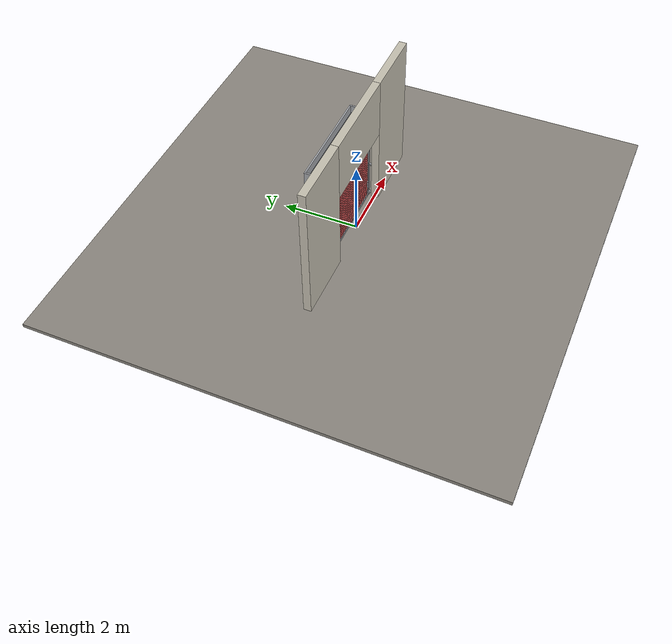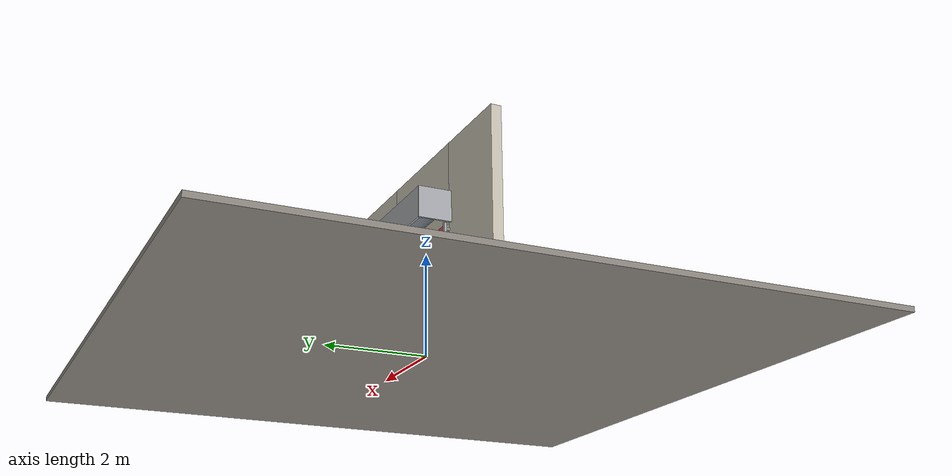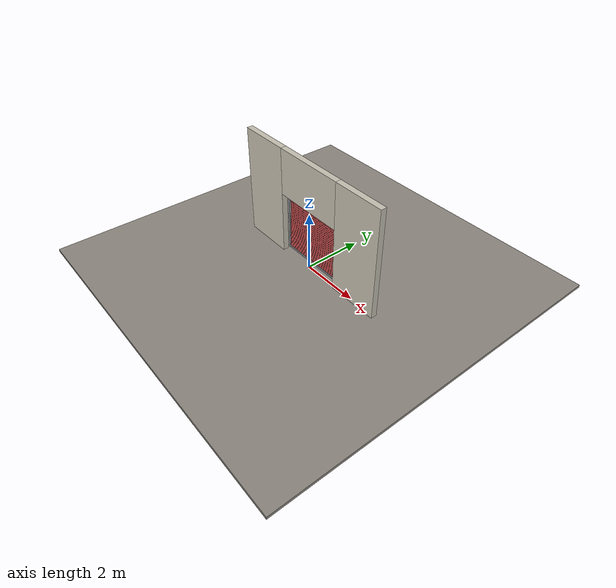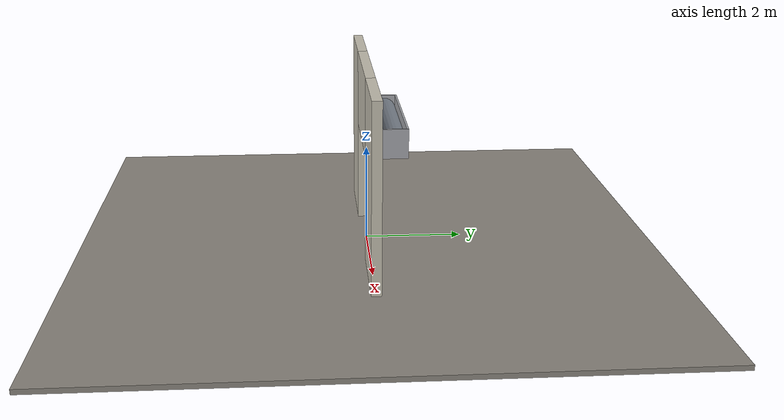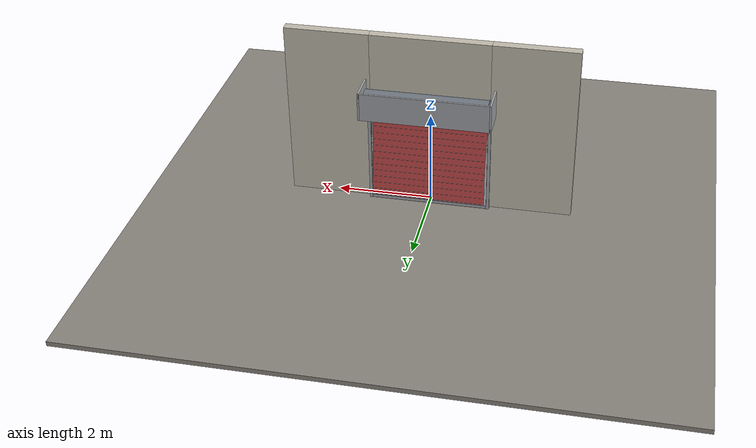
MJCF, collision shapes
<?xml version="1.0" ?>
<mujoco model="db0184_rollup_full">
  <compiler angle="radian" meshdir="../../hardware" texturedir="../../textures" autolimits="true" inertiafromgeom="false"/>
  <option timestep="0.002" integrator="implicitfast" cone="elliptic" impratio="10" noslip_iterations="3">
    <flag multiccd="enable"/>
  </option>
  <size memory="16M"/>
  <default>
    <geom condim="4" solref="0.005 1" solimp="0.95 0.99 0.001"/>
    <joint solreflimit="0.005 1" solimplimit="0.95 0.99 0.001"/>
    <tendon solreflimit="0.005 1"/>
    <equality solref="0.002 1"/>
  </default>
  <visual>
    <headlight ambient="0.4 0.4 0.4" diffuse="0.7 0.7 0.7" specular="0.2 0.2 0.2"/>
    <quality shadowsize="4096"/>
    <map znear="0.01" zfar="60"/>
  </visual>
  <asset>
    <mesh name="pull_bdc5e965ab" file="pull_bdc5e965ab.obj"/>
    <material name="mat_floor" rgba="0.55 0.53 0.5 1" specular="0.2" shininess="0.15" reflectance="0"/>
    <material name="mat_wall" rgba="0.78 0.76 0.7 1" specular="0.2" shininess="0.1" reflectance="0"/>
    <material name="mat_frame" rgba="0.45 0.48 0.52 1" specular="0.32" shininess="0.6" reflectance="0.08"/>
    <material name="mat_track" rgba="0.65 0.66 0.68 1" specular="0.74" shininess="0.5" reflectance="0.36"/>
    <material name="mat_curtain" rgba="0.8 0.81 0.83 1" specular="0.8" shininess="0.6" reflectance="0.4"/>
    <material name="mat_slat_line" rgba="0.25 0.25 0.25 1" specular="0.2" shininess="0.3" reflectance="0"/>
    <material name="mat_astragal" rgba="0.09 0.09 0.1 1" specular="0.2" shininess="0.1" reflectance="0"/>
    <material name="mat_op_black_matte_metal" rgba="0.05 0.05 0.05 1" specular="0.38" shininess="0.3" reflectance="0.12"/>
    <texture name="skybox" type="skybox" builtin="gradient" rgb1="0.6 0.7 0.85" rgb2="0.9 0.92 0.95" width="256" height="256"/>
  </asset>
  <worldbody>
    <light name="sun" pos="1.5 -2.5 4" dir="-0.3 0.5 -0.8" directional="true" diffuse="0.8 0.8 0.8" specular="0.3 0.3 0.3" castshadow="true"/>
    <light name="fill" pos="-1.5 2.5 3" dir="0.3 -0.5 -0.7" directional="true" diffuse="0.35 0.35 0.4" castshadow="false"/>
    <camera name="robot_view" pos="0 -2.959375 1.918625" xyaxes="1 0 0 0 0.26963 0.962964" fovy="52"/>
    <camera name="far_view" pos="0 2.959375 1.918625" xyaxes="-1 0 0 0 -0.26963 0.962964" fovy="52"/>
    <camera name="iso" pos="2.249125 -2.485875 2.392125" xyaxes="0.741536 0.670913 0 -0.242917 0.268487 0.932151" fovy="46"/>
    <camera name="detail_handle" pos="0.25 -0.97 0.51" xyaxes="0.975133 0.221621 0 -0.065674 0.288965 0.955084" fovy="38"/>
    <geom name="floor" type="box" size="6 6 0.05" pos="0 0 -0.05" material="mat_floor" group="0" contype="1" conaffinity="1" friction="0.8 0.005 0.0001" density="2400"/>
    <geom name="wall_left" type="box" size="0.8775 0.1 1.89" pos="-2.1225 0 1.89" material="mat_wall" group="0" contype="1" conaffinity="1" friction="0.6 0.005 0.0001" density="800"/>
    <geom name="wall_right" type="box" size="0.8775 0.1 1.89" pos="2.1225 0 1.89" material="mat_wall" group="0" contype="1" conaffinity="1" friction="0.6 0.005 0.0001" density="800"/>
    <geom name="wall_header" type="box" size="1.245 0.1 0.8" pos="0 0 2.98" material="mat_wall" group="0" contype="1" conaffinity="1" friction="0.6 0.005 0.0001" density="800"/>
    <geom name="guide_l" type="box" size="0.03 0.025 1.09" pos="-1.255 0.185 1.09" material="mat_track" group="0" contype="1" conaffinity="1" friction="0.6 0.005 0.0001" density="7850"/>
    <geom name="guide_r" type="box" size="0.03 0.025 1.09" pos="1.255 0.185 1.09" material="mat_track" group="0" contype="1" conaffinity="1" friction="0.6 0.005 0.0001" density="7850"/>
    <geom name="guide_bracket_l_0" type="box" size="0.028 0.034 0.02" pos="-1.255 0.13 0.12" material="mat_track" group="1" contype="0" conaffinity="0" density="7850"/>
    <geom name="guide_bracket_l_1" type="box" size="0.028 0.034 0.02" pos="-1.255 0.13 1.09" material="mat_track" group="1" contype="0" conaffinity="0" density="7850"/>
    <geom name="guide_bracket_l_2" type="box" size="0.028 0.034 0.02" pos="-1.255 0.13 2.06" material="mat_track" group="1" contype="0" conaffinity="0" density="7850"/>
    <geom name="guide_bracket_r_0" type="box" size="0.028 0.034 0.02" pos="1.255 0.13 0.12" material="mat_track" group="1" contype="0" conaffinity="0" density="7850"/>
    <geom name="guide_bracket_r_1" type="box" size="0.028 0.034 0.02" pos="1.255 0.13 1.09" material="mat_track" group="1" contype="0" conaffinity="0" density="7850"/>
    <geom name="guide_bracket_r_2" type="box" size="0.028 0.034 0.02" pos="1.255 0.13 2.06" material="mat_track" group="1" contype="0" conaffinity="0" density="7850"/>
    <geom name="coil_drum" type="cylinder" size="0.25 1.27" pos="0 0.463 2.48" quat="0.707107 0 0.707107 0" material="mat_frame" group="1" contype="0" conaffinity="0" density="300"/>
    <geom name="coil_shaft" type="cylinder" size="0.022 1.35" pos="0 0.463 2.48" quat="0.707107 0 0.707107 0" material="mat_track" group="1" contype="0" conaffinity="0" density="7850"/>
    <geom name="hood_front" type="box" size="1.34 0.02 0.3" pos="0 0.725 2.48" material="mat_track" group="1" contype="0" conaffinity="0" density="7850"/>
    <geom name="hood_end_l" type="box" size="0.02 0.3225 0.3" pos="-1.34 0.4225 2.48" material="mat_track" group="1" contype="0" conaffinity="0" density="7850"/>
    <geom name="hood_end_r" type="box" size="0.02 0.3225 0.3" pos="1.34 0.4225 2.48" material="mat_track" group="1" contype="0" conaffinity="0" density="7850"/>
    <site name="approach_point" pos="0 -2 0" quat="1 0 0 0" size="0.05" rgba="0.2 0.9 0.2 0.5" group="4"/>
    <site name="goal_point" pos="0 2 0" quat="1 0 0 0" size="0.05" rgba="0.2 0.9 0.2 0.5" group="4"/>
    <site name="door_plane_center" pos="0 0 1.09" quat="1 0 0 0" size="0.02" rgba="0.2 0.9 0.2 0.5" group="4"/>
    <body name="curtain" pos="0 0 0">
      <inertial pos="0 0.18466 0.942427" mass="59.50794" quat="0.706897 -0.707316 0 0" diaginertia="26.697429833 29.311920161 56.004631107"/>
      <joint name="curtain_slide" type="slide" axis="0 0 1" limited="true" range="0 2.08" damping="4.975397" frictionloss="93.371766" stiffness="75.778212" springref="6.933333" armature="0.5"/>
      <geom name="curtain_slab_col" type="box" size="1.22 0.005 1.065" pos="0 0.185 1.075" material="mat_curtain" group="3" contype="1" conaffinity="1" rgba="0.8 0.3 0.3 0.25" friction="0.35 0.005 0.0001" density="1"/>
      <geom name="curtain_rail_b" type="box" size="1.22 0.005 0.0225" pos="0 0.185 0.0325" material="mat_curtain" group="1" contype="0" conaffinity="0" density="1"/>
      <geom name="curtain_rail_t" type="box" size="1.22 0.005 0.0225" pos="0 0.185 2.1175" material="mat_curtain" group="1" contype="0" conaffinity="0" density="1"/>
      <geom name="curtain_stile_h" type="box" size="0.0225 0.005 1.065" pos="-1.1975 0.185 1.075" material="mat_curtain" group="1" contype="0" conaffinity="0" density="1"/>
      <geom name="curtain_stile_l" type="box" size="0.0225 0.005 1.065" pos="1.1975 0.185 1.075" material="mat_curtain" group="1" contype="0" conaffinity="0" density="1"/>
      <geom name="curtain_grille_0" type="cylinder" size="0.006 1.175" pos="0 0.185 0.086071" quat="0.707107 0 0.707107 0" material="mat_curtain" group="1" contype="0" conaffinity="0" density="1"/>
      <geom name="curtain_grille_1" type="cylinder" size="0.006 1.175" pos="0 0.185 0.238214" quat="0.707107 0 0.707107 0" material="mat_curtain" group="1" contype="0" conaffinity="0" density="1"/>
      <geom name="curtain_grille_2" type="cylinder" size="0.006 1.175" pos="0 0.185 0.390357" quat="0.707107 0 0.707107 0" material="mat_curtain" group="1" contype="0" conaffinity="0" density="1"/>
      <geom name="curtain_grille_3" type="cylinder" size="0.006 1.175" pos="0 0.185 0.5425" quat="0.707107 0 0.707107 0" material="mat_curtain" group="1" contype="0" conaffinity="0" density="1"/>
      <geom name="curtain_grille_4" type="cylinder" size="0.006 1.175" pos="0 0.185 0.694643" quat="0.707107 0 0.707107 0" material="mat_curtain" group="1" contype="0" conaffinity="0" density="1"/>
      <geom name="curtain_grille_5" type="cylinder" size="0.006 1.175" pos="0 0.185 0.846786" quat="0.707107 0 0.707107 0" material="mat_curtain" group="1" contype="0" conaffinity="0" density="1"/>
      <geom name="curtain_grille_6" type="cylinder" size="0.006 1.175" pos="0 0.185 0.998929" quat="0.707107 0 0.707107 0" material="mat_curtain" group="1" contype="0" conaffinity="0" density="1"/>
      <geom name="curtain_grille_7" type="cylinder" size="0.006 1.175" pos="0 0.185 1.151071" quat="0.707107 0 0.707107 0" material="mat_curtain" group="1" contype="0" conaffinity="0" density="1"/>
      <geom name="curtain_grille_8" type="cylinder" size="0.006 1.175" pos="0 0.185 1.303214" quat="0.707107 0 0.707107 0" material="mat_curtain" group="1" contype="0" conaffinity="0" density="1"/>
      <geom name="curtain_grille_9" type="cylinder" size="0.006 1.175" pos="0 0.185 1.455357" quat="0.707107 0 0.707107 0" material="mat_curtain" group="1" contype="0" conaffinity="0" density="1"/>
      <geom name="curtain_grille_10" type="cylinder" size="0.006 1.175" pos="0 0.185 1.6075" quat="0.707107 0 0.707107 0" material="mat_curtain" group="1" contype="0" conaffinity="0" density="1"/>
      <geom name="curtain_grille_11" type="cylinder" size="0.006 1.175" pos="0 0.185 1.759643" quat="0.707107 0 0.707107 0" material="mat_curtain" group="1" contype="0" conaffinity="0" density="1"/>
      <geom name="curtain_grille_12" type="cylinder" size="0.006 1.175" pos="0 0.185 1.911786" quat="0.707107 0 0.707107 0" material="mat_curtain" group="1" contype="0" conaffinity="0" density="1"/>
      <geom name="curtain_grille_13" type="cylinder" size="0.006 1.175" pos="0 0.185 2.063929" quat="0.707107 0 0.707107 0" material="mat_curtain" group="1" contype="0" conaffinity="0" density="1"/>
      <geom name="slat_line_1" type="box" size="1.22 0.001 0.003" pos="0 0.179 0.086071" material="mat_slat_line" group="1" contype="0" conaffinity="0" density="1"/>
      <geom name="slat_line_2" type="box" size="1.22 0.001 0.003" pos="0 0.179 0.162143" material="mat_slat_line" group="1" contype="0" conaffinity="0" density="1"/>
      <geom name="slat_line_3" type="box" size="1.22 0.001 0.003" pos="0 0.179 0.238214" material="mat_slat_line" group="1" contype="0" conaffinity="0" density="1"/>
      <geom name="slat_line_4" type="box" size="1.22 0.001 0.003" pos="0 0.179 0.314286" material="mat_slat_line" group="1" contype="0" conaffinity="0" density="1"/>
      <geom name="slat_line_5" type="box" size="1.22 0.001 0.003" pos="0 0.179 0.390357" material="mat_slat_line" group="1" contype="0" conaffinity="0" density="1"/>
      <geom name="slat_line_6" type="box" size="1.22 0.001 0.003" pos="0 0.179 0.466429" material="mat_slat_line" group="1" contype="0" conaffinity="0" density="1"/>
      <geom name="slat_line_7" type="box" size="1.22 0.001 0.003" pos="0 0.179 0.5425" material="mat_slat_line" group="1" contype="0" conaffinity="0" density="1"/>
      <geom name="slat_line_8" type="box" size="1.22 0.001 0.003" pos="0 0.179 0.618571" material="mat_slat_line" group="1" contype="0" conaffinity="0" density="1"/>
      <geom name="slat_line_9" type="box" size="1.22 0.001 0.003" pos="0 0.179 0.694643" material="mat_slat_line" group="1" contype="0" conaffinity="0" density="1"/>
      <geom name="slat_line_10" type="box" size="1.22 0.001 0.003" pos="0 0.179 0.770714" material="mat_slat_line" group="1" contype="0" conaffinity="0" density="1"/>
      <geom name="slat_line_11" type="box" size="1.22 0.001 0.003" pos="0 0.179 0.846786" material="mat_slat_line" group="1" contype="0" conaffinity="0" density="1"/>
      <geom name="slat_line_12" type="box" size="1.22 0.001 0.003" pos="0 0.179 0.922857" material="mat_slat_line" group="1" contype="0" conaffinity="0" density="1"/>
      <geom name="slat_line_13" type="box" size="1.22 0.001 0.003" pos="0 0.179 0.998929" material="mat_slat_line" group="1" contype="0" conaffinity="0" density="1"/>
      <geom name="slat_line_14" type="box" size="1.22 0.001 0.003" pos="0 0.179 1.075" material="mat_slat_line" group="1" contype="0" conaffinity="0" density="1"/>
      <geom name="slat_line_15" type="box" size="1.22 0.001 0.003" pos="0 0.179 1.151071" material="mat_slat_line" group="1" contype="0" conaffinity="0" density="1"/>
      <geom name="slat_line_16" type="box" size="1.22 0.001 0.003" pos="0 0.179 1.227143" material="mat_slat_line" group="1" contype="0" conaffinity="0" density="1"/>
      <geom name="slat_line_17" type="box" size="1.22 0.001 0.003" pos="0 0.179 1.303214" material="mat_slat_line" group="1" contype="0" conaffinity="0" density="1"/>
      <geom name="slat_line_18" type="box" size="1.22 0.001 0.003" pos="0 0.179 1.379286" material="mat_slat_line" group="1" contype="0" conaffinity="0" density="1"/>
      <geom name="slat_line_19" type="box" size="1.22 0.001 0.003" pos="0 0.179 1.455357" material="mat_slat_line" group="1" contype="0" conaffinity="0" density="1"/>
      <geom name="slat_line_20" type="box" size="1.22 0.001 0.003" pos="0 0.179 1.531429" material="mat_slat_line" group="1" contype="0" conaffinity="0" density="1"/>
      <geom name="slat_line_21" type="box" size="1.22 0.001 0.003" pos="0 0.179 1.6075" material="mat_slat_line" group="1" contype="0" conaffinity="0" density="1"/>
      <geom name="slat_line_22" type="box" size="1.22 0.001 0.003" pos="0 0.179 1.683571" material="mat_slat_line" group="1" contype="0" conaffinity="0" density="1"/>
      <geom name="slat_line_23" type="box" size="1.22 0.001 0.003" pos="0 0.179 1.759643" material="mat_slat_line" group="1" contype="0" conaffinity="0" density="1"/>
      <geom name="slat_line_24" type="box" size="1.22 0.001 0.003" pos="0 0.179 1.835714" material="mat_slat_line" group="1" contype="0" conaffinity="0" density="1"/>
      <geom name="slat_line_25" type="box" size="1.22 0.001 0.003" pos="0 0.179 1.911786" material="mat_slat_line" group="1" contype="0" conaffinity="0" density="1"/>
      <geom name="slat_line_26" type="box" size="1.22 0.001 0.003" pos="0 0.179 1.987857" material="mat_slat_line" group="1" contype="0" conaffinity="0" density="1"/>
      <geom name="slat_line_27" type="box" size="1.22 0.001 0.003" pos="0 0.179 2.063929" material="mat_slat_line" group="1" contype="0" conaffinity="0" density="1"/>
      <geom name="bottom_bar" type="box" size="1.22 0.02 0.03" pos="0 0.185 0.042" material="mat_track" group="0" contype="1" conaffinity="1" friction="0.6 0.005 0.0001" density="7850"/>
      <geom name="bottom_astragal" type="box" size="1.22 0.015 0.006" pos="0 0.185 0.006" material="mat_astragal" group="0" contype="1" conaffinity="1" friction="0.6 0.005 0.0001" density="1100"/>
      <geom name="lift_handle_n" type="mesh" mesh="pull_bdc5e965ab" pos="0 0.18 0.16" quat="0.707107 0.707107 0 0" material="mat_op_black_matte_metal" group="1" contype="0" conaffinity="0" density="3000"/>
      <geom name="lift_handle_col_n" type="box" size="0.1 0.006 0.015" pos="0 0.13 0.16" material="mat_op_black_matte_metal" group="3" contype="1" conaffinity="1" rgba="0.8 0.3 0.3 0.25" friction="0.6 0.005 0.0001" density="3000"/>
      <site name="lift_handle_grip_n" pos="0 0.13 0.16" quat="1 0 0 0" size="0.012" rgba="0.2 0.9 0.2 0.5" group="4"/>
    </body>
  </worldbody>
  <sensor>
    <jointpos name="curtain_slide_pos" joint="curtain_slide"/>
    <jointvel name="curtain_slide_vel" joint="curtain_slide"/>
  </sensor>
</mujoco>
